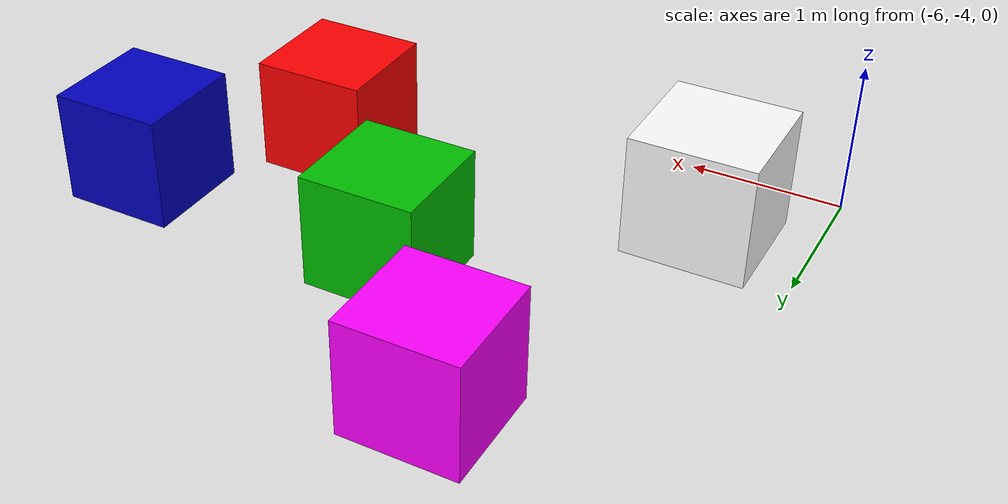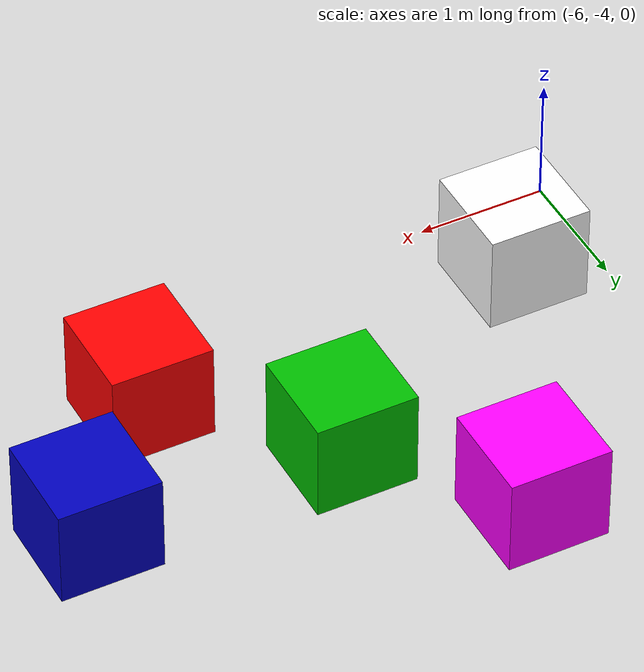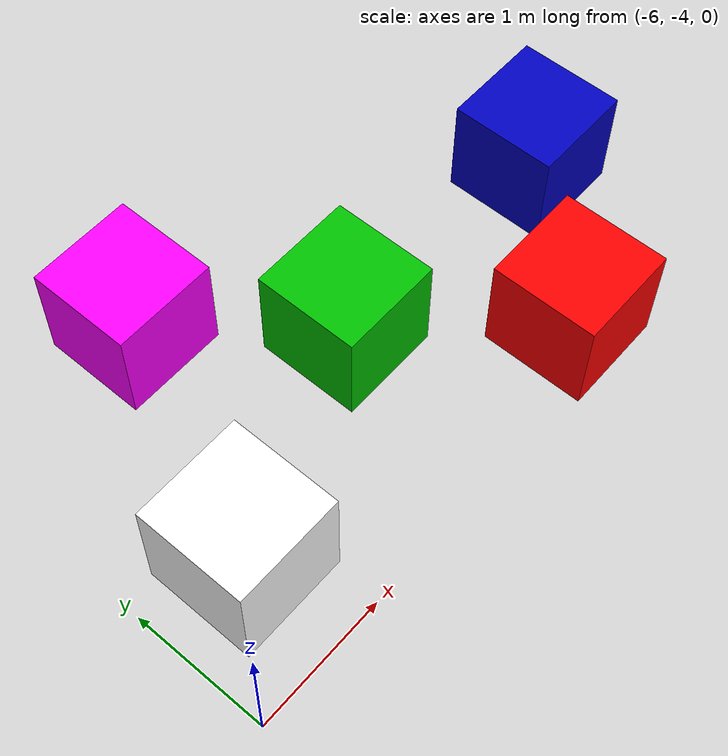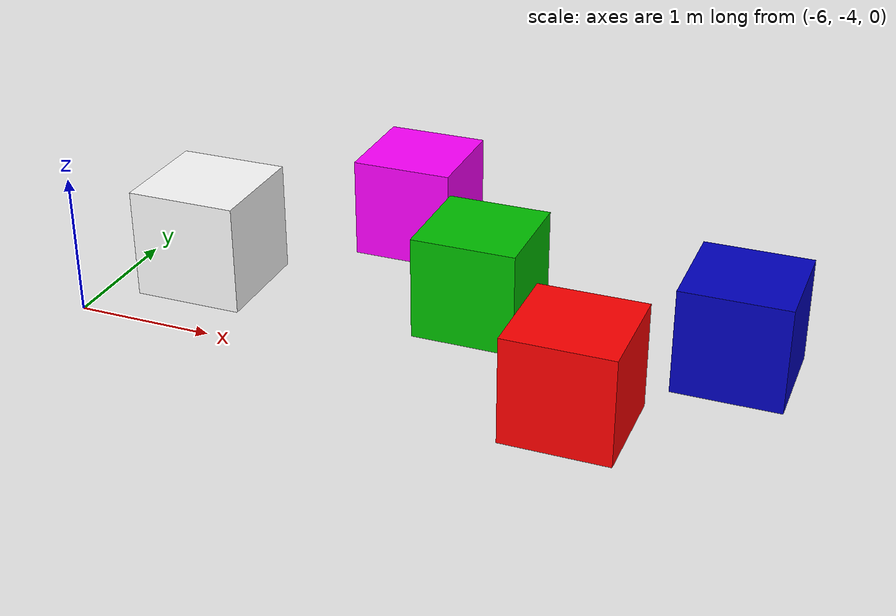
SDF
<sdf version="1.6">
 <world name="default">
  <model name="1_mavi">
   <link name="link">
    <inertial>
     <mass>1</mass>
     <inertia><ixx>1</ixx><ixy>0</ixy><ixz>0</ixz><iyy>1</iyy><iyz>0</iyz><izz>1</izz></inertia>
    </inertial>
    <visual name="visual">
     <geometry><mesh><uri>model://number1/meshes/number.dae</uri><scale>1 1 1</scale></mesh></geometry>
     <material>
      <script>
       <uri>model://number1/materials/scripts</uri>
       <uri>model://number1/materials/textures</uri>
       <name>Number/One</name>
      </script>
      <ambient>0 0 0.75 1</ambient>
      <diffuse>0 0 0.75 1</diffuse>
      <specular>0 0 0 1</specular>
      <emissive>0 0 0 1</emissive>
      <shader type="vertex"><normal_map>__default__</normal_map></shader>
     </material>
    </visual>
   </link>
   <static>1</static>
   <pose>-1.56272 -2.53763 0 0 -0 0</pose>
  </model>
  <model name="2_yesil">
   <link name="link">
    <inertial>
     <mass>1</mass>
     <inertia><ixx>1</ixx><ixy>0</ixy><ixz>0</ixz><iyy>1</iyy><iyz>0</iyz><izz>1</izz></inertia>
    </inertial>
    <visual name="visual">
     <geometry><mesh><uri>model://number1/meshes/number.dae</uri><scale>1 1 1</scale></mesh></geometry>
     <material>
      <script>
       <uri>model://number2/materials/scripts</uri>
       <uri>model://number2/materials/textures</uri>
       <name>Number/Two</name>
      </script>
      <ambient>0 0.75 0 1</ambient>
      <diffuse>0 0.75 0 1</diffuse>
      <specular>0 0 0 1</specular>
      <emissive>0 0 0 1</emissive>
      <shader type="vertex"><normal_map>__default__</normal_map></shader>
     </material>
    </visual>
   </link>
   <static>1</static>
   <pose>-3.53817 -2.47822 0 0 -0 0</pose>
  </model>
  <model name="4_kirmizi">
   <link name="link">
    <inertial>
     <mass>1</mass>
     <inertia><ixx>1</ixx><ixy>0</ixy><ixz>0</ixz><iyy>1</iyy><iyz>0</iyz><izz>1</izz></inertia>
    </inertial>
    <visual name="visual">
     <geometry><mesh><uri>model://number1/meshes/number.dae</uri><scale>1 1 1</scale></mesh></geometry>
     <material>
      <script>
       <uri>model://number4/materials/scripts</uri>
       <uri>model://number4/materials/textures</uri>
       <name>Number/Four</name>
      </script>
      <ambient>1 0 0 1</ambient>
      <diffuse>1 0 0 1</diffuse>
      <specular>0 0 0 1</specular>
      <emissive>0 0 0 1</emissive>
      <shader type="vertex"><normal_map>__default__</normal_map></shader>
     </material>
    </visual>
   </link>
   <static>1</static>
   <pose>-2.47475 -3.57663 0 0 -0 0</pose>
  </model>
  <model name="7_mor">
   <link name="link">
    <inertial>
     <mass>1</mass>
     <inertia><ixx>1</ixx><ixy>0</ixy><ixz>0</ixz><iyy>1</iyy><iyz>0</iyz><izz>1</izz></inertia>
    </inertial>
    <visual name="visual">
     <geometry><mesh><uri>model://number1/meshes/number.dae</uri><scale>1 1 1</scale></mesh></geometry>
     <material>
      <script>
       <uri>model://number7/materials/scripts</uri>
       <uri>model://number7/materials/textures</uri>
       <name>Number/Seven</name>
      </script>
      <ambient>1 0 1 1</ambient>
      <diffuse>1 0 1 1</diffuse>
      <specular>0 0 0 1</specular>
      <emissive>0 0 0 1</emissive>
      <shader type="vertex"><normal_map>__default__</normal_map></shader>
     </material>
    </visual>
   </link>
   <static>1</static>
   <pose>-4.47682 -1.37354 0 0 -0 0</pose>
  </model>
  <model name="6normal">
   <link name="link">
    <inertial>
     <mass>1</mass>
     <inertia><ixx>1</ixx><ixy>0</ixy><ixz>0</ixz><iyy>1</iyy><iyz>0</iyz><izz>1</izz></inertia>
    </inertial>
    <visual name="visual">
     <geometry><mesh><uri>model://number1/meshes/number.dae</uri><scale>1 1 1</scale></mesh></geometry>
     <material>
      <script>
       <uri>model://number6/materials/scripts</uri>
       <uri>model://number6/materials/textures</uri>
       <name>Number/Six</name>
      </script>
      <ambient>1 1 1 1</ambient>
      <diffuse>1 1 1 1</diffuse>
      <specular>0 0 0 1</specular>
      <emissive>0 0 0 1</emissive>
      <shader type="vertex"><normal_map>__default__</normal_map></shader>
     </material>
    </visual>
   </link>
   <static>1</static>
   <pose>-5.3486 -3.25773 0.4 0 -0 0</pose>
  </model>
 </world>
</sdf>
